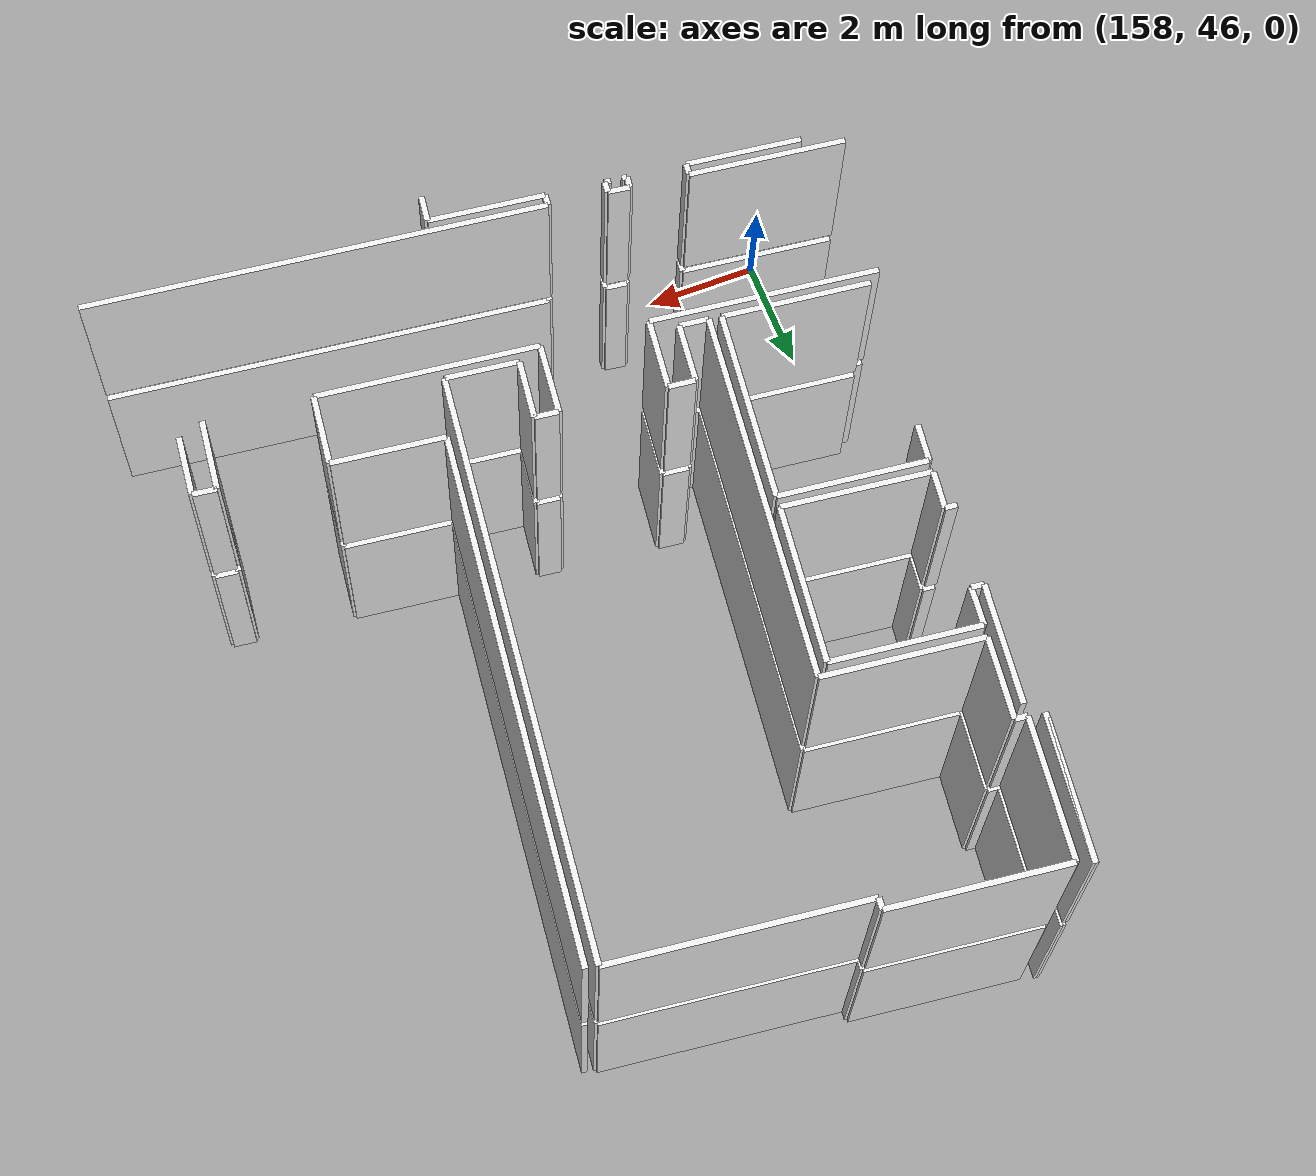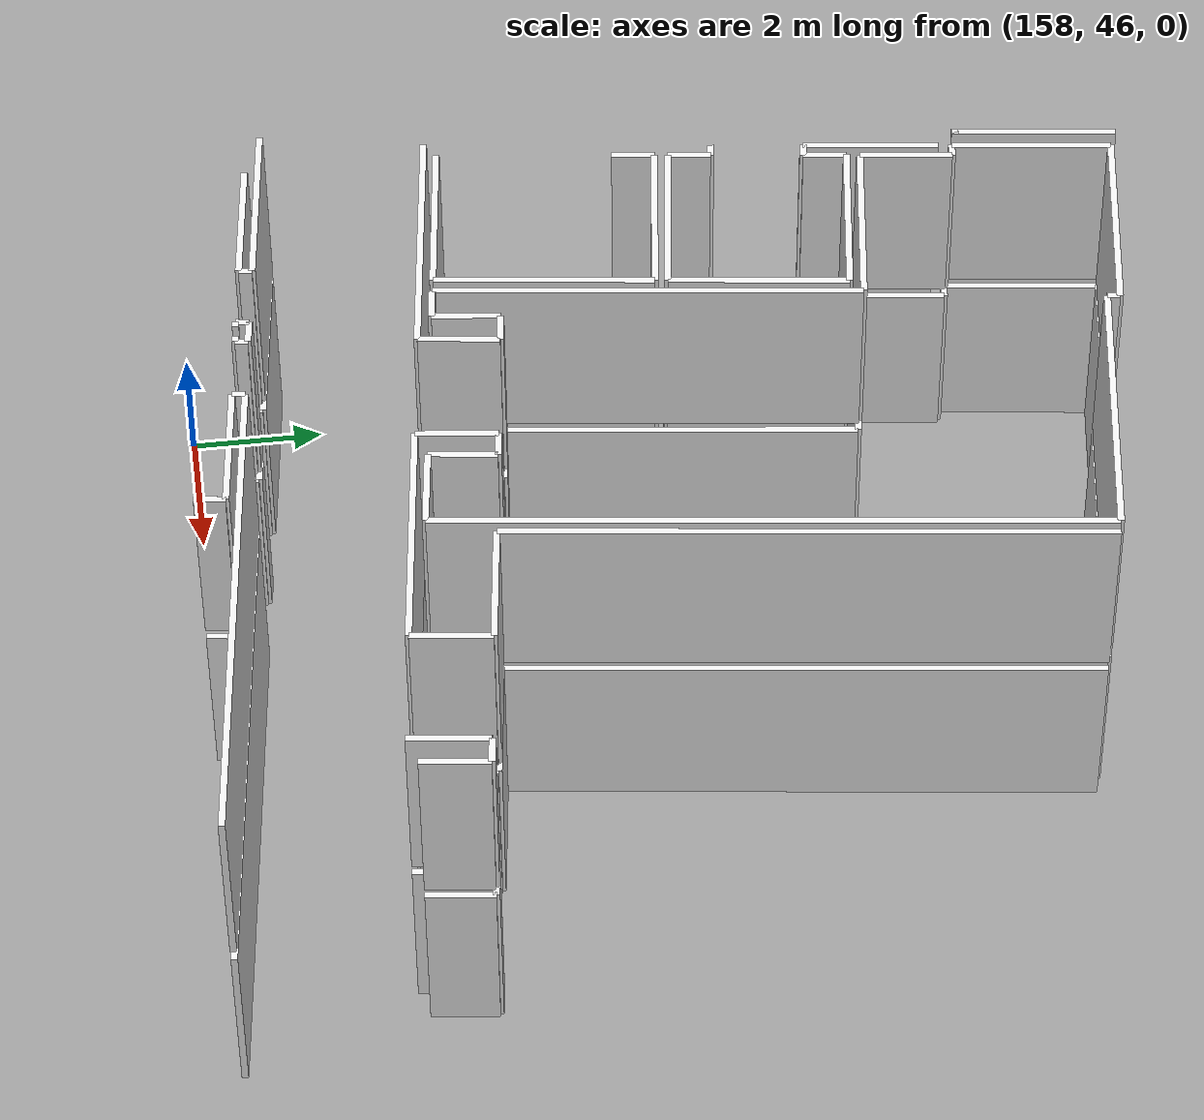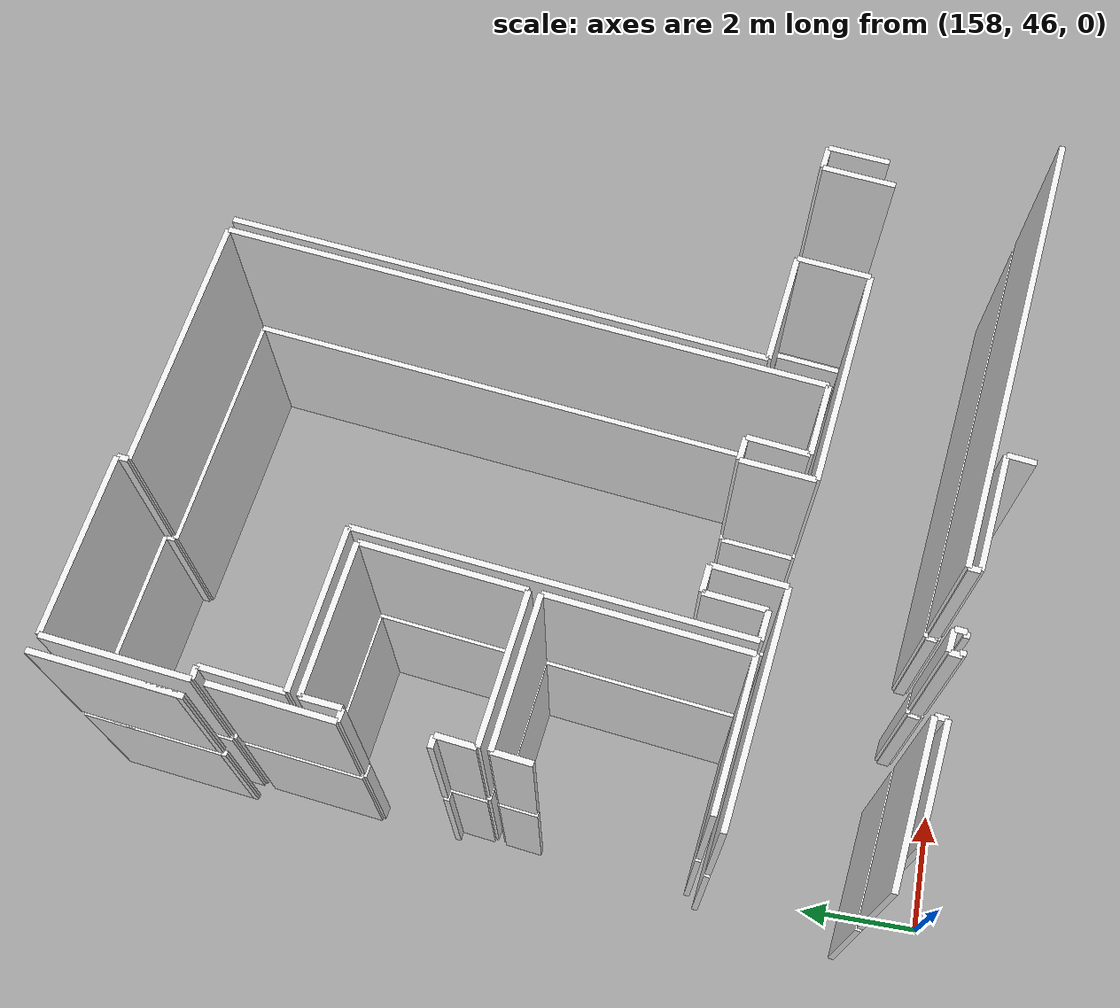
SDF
<sdf version="1.6">
 <world name="default">
  <model name="wall_166.1_46.3_0.0_link">
   <static>true</static>
   <pose>166.14500000001863 46.324999999953434 1.5 0 0 3.0218576675715907</pose>
   <link name="link">
    <visual name="visual">
     <geometry><box><size>7.7857433813364185 0.1 3</size></box></geometry>
     <material>
      <script><uri>file://media/materials/scripts/gazebo.material</uri><name>Gazebo/White</name></script>
     </material>
    </visual>
   </link>
  </model>
  <model name="wall_162.3_46.7_0.0_link">
   <static>true</static>
   <pose>162.27000000001863 46.69500000006519 1.5 0 0 -1.675673265652709</pose>
   <link name="link">
    <visual name="visual">
     <geometry><box><size>0.19104973169180559 0.1 3</size></box></geometry>
     <material>
      <script><uri>file://media/materials/scripts/gazebo.material</uri><name>Gazebo/White</name></script>
     </material>
    </visual>
   </link>
  </model>
  <model name="wall_161.3_46.8_0.0_link">
   <static>true</static>
   <pose>161.27000000001863 46.81500000017695 1.5 0 0 1.4659193879370842</pose>
   <link name="link">
    <visual name="visual">
     <geometry><box><size>0.19104973169180559 0.1 3</size></box></geometry>
     <material>
      <script><uri>file://media/materials/scripts/gazebo.material</uri><name>Gazebo/White</name></script>
     </material>
    </visual>
   </link>
  </model>
  <model name="wall_161.1_46.9_0.0_link">
   <static>true</static>
   <pose>161.09500000000116 46.93500000005588 1.5 0 0 3.007271212150422</pose>
   <link name="link">
    <visual name="visual">
     <geometry><box><size>0.3733630940800139 0.1 3</size></box></geometry>
     <material>
      <script><uri>file://media/materials/scripts/gazebo.material</uri><name>Gazebo/White</name></script>
     </material>
    </visual>
   </link>
  </model>
  <model name="wall_160.9_46.9_0.0_link">
   <static>true</static>
   <pose>160.89499999998952 46.859999999869615 1.5 0 0 -1.7196862741197598</pose>
   <link name="link">
    <visual name="visual">
     <geometry><box><size>0.20223748434128064 0.1 3</size></box></geometry>
     <material>
      <script><uri>file://media/materials/scripts/gazebo.material</uri><name>Gazebo/White</name></script>
     </material>
    </visual>
   </link>
  </model>
  <model name="wall_159.9_47.0_0.0_link">
   <static>true</static>
   <pose>159.89999999999418 46.97999999998137 1.5 0 0 1.4711276745918913</pose>
   <link name="link">
    <visual name="visual">
     <geometry><box><size>0.20099751260381943 0.1 3</size></box></geometry>
     <material>
      <script><uri>file://media/materials/scripts/gazebo.material</uri><name>Gazebo/White</name></script>
     </material>
    </visual>
   </link>
  </model>
  <model name="wall_158.6_47.2_0.0_link">
   <static>true</static>
   <pose>158.5899999999965 47.23999999999069 1.5 0 0 3.020968985070269</pose>
   <link name="link">
    <visual name="visual">
     <geometry><box><size>2.659323222111057 0.1 3</size></box></geometry>
     <material>
      <script><uri>file://media/materials/scripts/gazebo.material</uri><name>Gazebo/White</name></script>
     </material>
    </visual>
   </link>
  </model>
  <model name="wall_158.5_56.5_0.0_link">
   <static>true</static>
   <pose>158.51500000001397 56.53000000002794 1.5 0 0 -1.6939325529007196</pose>
   <link name="link">
    <visual name="visual">
     <geometry><box><size>2.0354115063237828 0.1 3</size></box></geometry>
     <material>
      <script><uri>file://media/materials/scripts/gazebo.material</uri><name>Gazebo/White</name></script>
     </material>
    </visual>
   </link>
  </model>
  <model name="wall_158.5_55.5_0.0_link">
   <static>true</static>
   <pose>158.49499999999534 55.50500000012107 1.5 0 0 -0.14189705367284136</pose>
   <link name="link">
    <visual name="visual">
     <geometry><box><size>0.2121320342901098 0.1 3</size></box></geometry>
     <material>
      <script><uri>file://media/materials/scripts/gazebo.material</uri><name>Gazebo/White</name></script>
     </material>
    </visual>
   </link>
  </model>
  <model name="wall_158.3_54.1_0.0_link">
   <static>true</static>
   <pose>158.3299999999872 54.11999999987893 1.5 0 0 3.0419240010121844</pose>
   <link name="link">
    <visual name="visual">
     <geometry><box><size>0.20099751243585498 0.1 3</size></box></geometry>
     <material>
      <script><uri>file://media/materials/scripts/gazebo.material</uri><name>Gazebo/White</name></script>
     </material>
    </visual>
   </link>
  </model>
  <model name="wall_159.6_49.6_0.0_link">
   <static>true</static>
   <pose>159.62000000002445 49.609999999869615 1.5 0 0 -0.11984180790081929</pose>
   <link name="link">
    <visual name="visual">
     <geometry><box><size>3.8475966524597003 0.1 3</size></box></geometry>
     <material>
      <script><uri>file://media/materials/scripts/gazebo.material</uri><name>Gazebo/White</name></script>
     </material>
    </visual>
   </link>
  </model>
  <model name="wall_161.6_50.0_0.0_link">
   <static>true</static>
   <pose>161.60500000001048 49.984999999869615 1.5 0 0 1.4474586259198403</pose>
   <link name="link">
    <visual name="visual">
     <geometry><box><size>1.2192620718694447 0.1 3</size></box></geometry>
     <material>
      <script><uri>file://media/materials/scripts/gazebo.material</uri><name>Gazebo/White</name></script>
     </material>
    </visual>
   </link>
  </model>
  <model name="wall_163.4_49.8_0.0_link">
   <static>true</static>
   <pose>163.39000000001397 49.77499999990687 1.5 0 0 -1.6859866085024886</pose>
   <link name="link">
    <visual name="visual">
     <geometry><box><size>1.2180722474113592 0.1 3</size></box></geometry>
     <material>
      <script><uri>file://media/materials/scripts/gazebo.material</uri><name>Gazebo/White</name></script>
     </material>
    </visual>
   </link>
  </model>
  <model name="wall_165.2_48.9_0.0_link">
   <static>true</static>
   <pose>165.1600000000035 48.949999999953434 1.5 0 0 -0.11900029336803308</pose>
   <link name="link">
    <visual name="visual">
     <geometry><box><size>3.7062110031539515 0.1 3</size></box></geometry>
     <material>
      <script><uri>file://media/materials/scripts/gazebo.material</uri><name>Gazebo/White</name></script>
     </material>
    </visual>
   </link>
  </model>
  <model name="wall_167.1_49.3_0.0_link">
   <static>true</static>
   <pose>167.07500000001164 49.330000000074506 1.5 0 0 1.446441332248135</pose>
   <link name="link">
    <visual name="visual">
     <geometry><box><size>1.2093386624324964 0.1 3</size></box></geometry>
     <material>
      <script><uri>file://media/materials/scripts/gazebo.material</uri><name>Gazebo/White</name></script>
     </material>
    </visual>
   </link>
  </model>
  <model name="wall_168.9_49.1_0.0_link">
   <static>true</static>
   <pose>168.8649999999907 49.11499999999069 1.5 0 0 -1.6941340276703445</pose>
   <link name="link">
    <visual name="visual">
     <geometry><box><size>1.2192620723387293 0.1 3</size></box></geometry>
     <material>
      <script><uri>file://media/materials/scripts/gazebo.material</uri><name>Gazebo/White</name></script>
     </material>
    </visual>
   </link>
  </model>
  <model name="wall_159.2_49.9_0.0_link">
   <static>true</static>
   <pose>159.1699999999837 49.86499999999069 1.5 0 0 -0.11640682593514659</pose>
   <link name="link">
    <visual name="visual">
     <geometry><box><size>2.4968980755447623 0.1 3</size></box></geometry>
     <material>
      <script><uri>file://media/materials/scripts/gazebo.material</uri><name>Gazebo/White</name></script>
     </material>
    </visual>
   </link>
  </model>
  <model name="wall_160.6_51.4_0.0_link">
   <static>true</static>
   <pose>160.60999999998603 51.35000000009313 1.5 0 0 1.4487071893822745</pose>
   <link name="link">
    <visual name="visual">
     <geometry><box><size>3.284448203056534 0.1 3</size></box></geometry>
     <material>
      <script><uri>file://media/materials/scripts/gazebo.material</uri><name>Gazebo/White</name></script>
     </material>
    </visual>
   </link>
  </model>
  <model name="wall_159.6_53.1_0.0_link">
   <static>true</static>
   <pose>159.57000000000698 53.125 1.5 0 0 3.025185827469413</pose>
   <link name="link">
    <visual name="visual">
     <geometry><box><size>2.4968980755988457 0.1 3</size></box></geometry>
     <material>
      <script><uri>file://media/materials/scripts/gazebo.material</uri><name>Gazebo/White</name></script>
     </material>
    </visual>
   </link>
  </model>
  <model name="wall_158.3_52.9_0.0_link">
   <static>true</static>
   <pose>158.29000000000815 52.949999999953434 1.5 0 0 -1.695151321341658</pose>
   <link name="link">
    <visual name="visual">
     <geometry><box><size>0.6449806199952839 0.1 3</size></box></geometry>
     <material>
      <script><uri>file://media/materials/scripts/gazebo.material</uri><name>Gazebo/White</name></script>
     </material>
    </visual>
   </link>
  </model>
  <model name="wall_158.8_57.0_0.0_link">
   <static>true</static>
   <pose>158.7850000000035 57.03000000002794 1.5 0 0 1.4482254517181363</pose>
   <link name="link">
    <visual name="visual">
     <geometry><box><size>1.390431588022665 0.1 3</size></box></geometry>
     <material>
      <script><uri>file://media/materials/scripts/gazebo.material</uri><name>Gazebo/White</name></script>
     </material>
    </visual>
   </link>
  </model>
  <model name="wall_158.8_57.7_0.0_link">
   <static>true</static>
   <pose>158.76499999998487 57.730000000214204 1.5 0 0 3.0466409471685547</pose>
   <link name="link">
    <visual name="visual">
     <geometry><box><size>0.21095023111991618 0.1 3</size></box></geometry>
     <material>
      <script><uri>file://media/materials/scripts/gazebo.material</uri><name>Gazebo/White</name></script>
     </material>
    </visual>
   </link>
  </model>
  <model name="wall_158.8_58.9_0.0_link">
   <static>true</static>
   <pose>158.80499999999302 58.93000000016764 1.5 0 0 1.4495453057038894</pose>
   <link name="link">
    <visual name="visual">
     <geometry><box><size>2.3976029695280316 0.1 3</size></box></geometry>
     <material>
      <script><uri>file://media/materials/scripts/gazebo.material</uri><name>Gazebo/White</name></script>
     </material>
    </visual>
   </link>
  </model>
  <model name="wall_160.4_59.9_0.0_link">
   <static>true</static>
   <pose>160.44000000000233 59.93999999994412 1.5 0 0 -0.12022278677294355</pose>
   <link name="link">
    <visual name="visual">
     <geometry><box><size>3.0016662039824453 0.1 3</size></box></geometry>
     <material>
      <script><uri>file://media/materials/scripts/gazebo.material</uri><name>Gazebo/White</name></script>
     </material>
    </visual>
   </link>
  </model>
  <model name="wall_161.9_59.7_0.0_link">
   <static>true</static>
   <pose>161.9199999999837 59.66499999980442 1.5 0 0 -1.675673265652709</pose>
   <link name="link">
    <visual name="visual">
     <geometry><box><size>0.19104973169180559 0.1 3</size></box></geometry>
     <material>
      <script><uri>file://media/materials/scripts/gazebo.material</uri><name>Gazebo/White</name></script>
     </material>
    </visual>
   </link>
  </model>
  <model name="wall_164.0_59.3_0.0_link">
   <static>true</static>
   <pose>164.02999999999884 59.31499999994412 1.5 0 0 -0.11970791786700266</pose>
   <link name="link">
    <visual name="visual">
     <geometry><box><size>4.27056202392456 0.1 3</size></box></geometry>
     <material>
      <script><uri>file://media/materials/scripts/gazebo.material</uri><name>Gazebo/White</name></script>
     </material>
    </visual>
   </link>
  </model>
  <model name="wall_165.6_54.1_0.0_link">
   <static>true</static>
   <pose>165.55000000001746 54.11499999999069 1.5 0 0 -1.691540779261425</pose>
   <link name="link">
    <visual name="visual">
     <geometry><box><size>9.96253481813775 0.1 3</size></box></geometry>
     <material>
      <script><uri>file://media/materials/scripts/gazebo.material</uri><name>Gazebo/White</name></script>
     </material>
    </visual>
   </link>
  </model>
  <model name="wall_164.3_49.2_0.0_link">
   <static>true</static>
   <pose>164.3399999999965 49.24499999987893 1.5 0 0 3.0192558198525035</pose>
   <link name="link">
    <visual name="visual">
     <geometry><box><size>1.2291867230188886 0.1 3</size></box></geometry>
     <material>
      <script><uri>file://media/materials/scripts/gazebo.material</uri><name>Gazebo/White</name></script>
     </material>
    </visual>
   </link>
  </model>
  <model name="wall_163.8_49.8_0.0_link">
   <static>true</static>
   <pose>163.7949999999837 49.824999999953434 1.5 0 0 1.44278726814752</pose>
   <link name="link">
    <visual name="visual">
     <geometry><box><size>1.0183319696888344 0.1 3</size></box></geometry>
     <material>
      <script><uri>file://media/materials/scripts/gazebo.material</uri><name>Gazebo/White</name></script>
     </material>
    </visual>
   </link>
  </model>
  <model name="wall_163.7_50.4_0.0_link">
   <static>true</static>
   <pose>163.6600000000035 50.35499999998137 1.5 0 0 3.017237659490783</pose>
   <link name="link">
    <visual name="visual">
     <geometry><box><size>0.4031128873571693 0.1 3</size></box></geometry>
     <material>
      <script><uri>file://media/materials/scripts/gazebo.material</uri><name>Gazebo/White</name></script>
     </material>
    </visual>
   </link>
  </model>
  <model name="wall_161.5_50.6_0.0_link">
   <static>true</static>
   <pose>161.4549999999872 50.61499999999069 1.5 0 0 3.030935431805427</pose>
   <link name="link">
    <visual name="visual">
     <geometry><box><size>0.4527692569492954 0.1 3</size></box></geometry>
     <material>
      <script><uri>file://media/materials/scripts/gazebo.material</uri><name>Gazebo/White</name></script>
     </material>
    </visual>
   </link>
  </model>
  <model name="wall_161.2_50.1_0.0_link">
   <static>true</static>
   <pose>161.1699999999837 50.13500000000931 1.5 0 0 -1.6890538359013414</pose>
   <link name="link">
    <visual name="visual">
     <geometry><box><size>1.0171037314295985 0.1 3</size></box></geometry>
     <material>
      <script><uri>file://media/materials/scripts/gazebo.material</uri><name>Gazebo/White</name></script>
     </material>
    </visual>
   </link>
  </model>
  <model name="wall_160.9_49.7_0.0_link">
   <static>true</static>
   <pose>160.8649999999907 49.65999999991618 1.5 0 0 3.019750216455228</pose>
   <link name="link">
    <visual name="visual">
     <geometry><box><size>0.4936598018854468 0.1 3</size></box></geometry>
     <material>
      <script><uri>file://media/materials/scripts/gazebo.material</uri><name>Gazebo/White</name></script>
     </material>
    </visual>
   </link>
  </model>
  <model name="wall_161.0_52.9_0.0_link">
   <static>true</static>
   <pose>161.0 52.85499999998137 1.5 0 0 1.4513051071243046</pose>
   <link name="link">
    <visual name="visual">
     <geometry><box><size>6.375460767737294 0.1 3</size></box></geometry>
     <material>
      <script><uri>file://media/materials/scripts/gazebo.material</uri><name>Gazebo/White</name></script>
     </material>
    </visual>
   </link>
  </model>
  <model name="wall_160.0_56.2_0.0_link">
   <static>true</static>
   <pose>160.04000000000815 56.17999999993481 1.5 0 0 3.0227523090833937</pose>
   <link name="link">
    <visual name="visual">
     <geometry><box><size>2.6990368652271632 0.1 3</size></box></geometry>
     <material>
      <script><uri>file://media/materials/scripts/gazebo.material</uri><name>Gazebo/White</name></script>
     </material>
    </visual>
   </link>
  </model>
  <model name="wall_169.3_49.2_0.0_link">
   <static>true</static>
   <pose>169.27999999999884 49.15999999991618 1.5 0 0 1.453687582178367</pose>
   <link name="link">
    <visual name="visual">
     <geometry><box><size>1.0270345661421774 0.1 3</size></box></geometry>
     <material>
      <script><uri>file://media/materials/scripts/gazebo.material</uri><name>Gazebo/White</name></script>
     </material>
    </visual>
   </link>
  </model>
  <model name="wall_169.1_49.7_0.0_link">
   <static>true</static>
   <pose>169.14000000001397 49.69500000006519 1.5 0 0 3.01723765836245</pose>
   <link name="link">
    <visual name="visual">
     <geometry><box><size>0.4031128874726857 0.1 3</size></box></geometry>
     <material>
      <script><uri>file://media/materials/scripts/gazebo.material</uri><name>Gazebo/White</name></script>
     </material>
    </visual>
   </link>
  </model>
  <model name="wall_166.2_50.0_0.0_link">
   <static>true</static>
   <pose>166.21000000002095 50.045000000158325 1.5 0 0 3.0198571684511863</pose>
   <link name="link">
    <visual name="visual">
     <geometry><box><size>1.894016895386348 0.1 3</size></box></geometry>
     <material>
      <script><uri>file://media/materials/scripts/gazebo.material</uri><name>Gazebo/White</name></script>
     </material>
    </visual>
   </link>
  </model>
  <model name="wall_165.8_54.6_0.0_link">
   <static>true</static>
   <pose>165.80999999999767 54.59499999997206 1.5 0 0 1.4496339921387622</pose>
   <link name="link">
    <visual name="visual">
     <geometry><box><size>8.935507819571937 0.1 3</size></box></geometry>
     <material>
      <script><uri>file://media/materials/scripts/gazebo.material</uri><name>Gazebo/White</name></script>
     </material>
    </visual>
   </link>
  </model>
  <model name="wall_158.9_47.0_0.0_link">
   <static>true</static>
   <pose>158.91500000000815 47.0 1.5 0 0 -0.12246105752953153</pose>
   <link name="link">
    <visual name="visual">
     <geometry><box><size>1.964713719642811 0.1 3</size></box></geometry>
     <material>
      <script><uri>file://media/materials/scripts/gazebo.material</uri><name>Gazebo/White</name></script>
     </material>
    </visual>
   </link>
  </model>
  <model name="wall_160.9_46.8_0.0_link">
   <static>true</static>
   <pose>160.92499999998836 46.75499999988824 1.5 0 0 -0.11065721876040727</pose>
   <link name="link">
    <visual name="visual">
     <geometry><box><size>0.09055385132429387 0.1 3</size></box></geometry>
     <material>
      <script><uri>file://media/materials/scripts/gazebo.material</uri><name>Gazebo/White</name></script>
     </material>
    </visual>
   </link>
  </model>
  <model name="wall_161.2_46.7_0.0_link">
   <static>true</static>
   <pose>161.20999999999185 46.72500000009313 1.5 0 0 -0.09966865024353948</pose>
   <link name="link">
    <visual name="visual">
     <geometry><box><size>0.10049875622371936 0.1 3</size></box></geometry>
     <material>
      <script><uri>file://media/materials/scripts/gazebo.material</uri><name>Gazebo/White</name></script>
     </material>
    </visual>
   </link>
  </model>
  <model name="wall_163.2_46.5_0.0_link">
   <static>true</static>
   <pose>163.2399999999907 46.47999999998137 1.5 0 0 -0.12184243713456504</pose>
   <link name="link">
    <visual name="visual">
     <geometry><box><size>1.9746392075417871 0.1 3</size></box></geometry>
     <material>
      <script><uri>file://media/materials/scripts/gazebo.material</uri><name>Gazebo/White</name></script>
     </material>
    </visual>
   </link>
  </model>
  <model name="wall_164.2_46.1_0.0_link">
   <static>true</static>
   <pose>164.18999999997322 46.12999999988824 1.5 0 0 -1.7004988639562184</pose>
   <link name="link">
    <visual name="visual">
     <geometry><box><size>0.46389654015248694 0.1 3</size></box></geometry>
     <material>
      <script><uri>file://media/materials/scripts/gazebo.material</uri><name>Gazebo/White</name></script>
     </material>
    </visual>
   </link>
  </model>
  <model name="wall_161.0_54.5_0.0_link">
   <static>true</static>
   <pose>160.99499999999534 54.50499999988824 1.5 0 0 1.4478244572426628</pose>
   <link name="link">
    <visual name="visual">
     <geometry><box><size>2.6903159664943592 0.1 3</size></box></geometry>
     <material>
      <script><uri>file://media/materials/scripts/gazebo.material</uri><name>Gazebo/White</name></script>
     </material>
    </visual>
   </link>
  </model>
  <model name="wall_159.9_56.0_0.0_link">
   <static>true</static>
   <pose>159.91499999997905 55.98999999999069 1.5 0 0 3.021688668113723</pose>
   <link name="link">
    <visual name="visual">
     <geometry><box><size>2.508007177047398 0.1 3</size></box></geometry>
     <material>
      <script><uri>file://media/materials/scripts/gazebo.material</uri><name>Gazebo/White</name></script>
     </material>
    </visual>
   </link>
  </model>
  <model name="wall_158.6_55.8_0.0_link">
   <static>true</static>
   <pose>158.6349999999802 55.81500000017695 1.5 0 0 -1.6780751824691755</pose>
   <link name="link">
    <visual name="visual">
     <geometry><box><size>0.6537583650553972 0.1 3</size></box></geometry>
     <material>
      <script><uri>file://media/materials/scripts/gazebo.material</uri><name>Gazebo/White</name></script>
     </material>
    </visual>
   </link>
  </model>
  <model name="wall_158.4_53.8_0.0_link">
   <static>true</static>
   <pose>158.38999999998487 53.79000000003725 1.5 0 0 -1.6951513214312084</pose>
   <link name="link">
    <visual name="visual">
     <geometry><box><size>0.6449806195332185 0.1 3</size></box></geometry>
     <material>
      <script><uri>file://media/materials/scripts/gazebo.material</uri><name>Gazebo/White</name></script>
     </material>
    </visual>
   </link>
  </model>
  <model name="wall_159.6_53.3_0.0_link">
   <static>true</static>
   <pose>159.5899999999965 53.32000000006519 1.5 0 0 -0.12038282090969171</pose>
   <link name="link">
    <visual name="visual">
     <geometry><box><size>2.498079262226073 0.1 3</size></box></geometry>
     <material>
      <script><uri>file://media/materials/scripts/gazebo.material</uri><name>Gazebo/White</name></script>
     </material>
    </visual>
   </link>
  </model>
  <model name="wall_158.5_59.1_0.0_link">
   <static>true</static>
   <pose>158.5450000000128 59.06000000005588 1.5 0 0 -1.6930647307080706</pose>
   <link name="link">
    <visual name="visual">
     <geometry><box><size>2.377751038601466 0.1 3</size></box></geometry>
     <material>
      <script><uri>file://media/materials/scripts/gazebo.material</uri><name>Gazebo/White</name></script>
     </material>
    </visual>
   </link>
  </model>
  <model name="wall_158.4_57.8_0.0_link">
   <static>true</static>
   <pose>158.39500000001863 57.829999999841675 1.5 0 0 -1.6704649792860586</pose>
   <link name="link">
    <visual name="visual">
     <geometry><box><size>0.10049875630480566 0.1 3</size></box></geometry>
     <material>
      <script><uri>file://media/materials/scripts/gazebo.material</uri><name>Gazebo/White</name></script>
     </material>
    </visual>
   </link>
  </model>
  <model name="wall_158.5_59.0_0.0_link">
   <static>true</static>
   <pose>158.54000000000815 59.01000000000931 1.5 0 0 1.4494443262497225</pose>
   <link name="link">
    <visual name="visual">
     <geometry><box><size>2.4782251717914545 0.1 3</size></box></geometry>
     <material>
      <script><uri>file://media/materials/scripts/gazebo.material</uri><name>Gazebo/White</name></script>
     </material>
    </visual>
   </link>
  </model>
  <model name="wall_166.1_46.3_3.2_link">
   <static>true</static>
   <pose>166.14500000001863 46.324999999953434 4.7 0 0 3.0218576675715907</pose>
   <link name="link">
    <visual name="visual">
     <geometry><box><size>7.7857433813364185 0.1 3</size></box></geometry>
     <material>
      <script><uri>file://media/materials/scripts/gazebo.material</uri><name>Gazebo/White</name></script>
     </material>
    </visual>
   </link>
  </model>
  <model name="wall_162.3_46.7_3.2_link">
   <static>true</static>
   <pose>162.27000000001863 46.69500000006519 4.7 0 0 -1.675673265652709</pose>
   <link name="link">
    <visual name="visual">
     <geometry><box><size>0.19104973169180559 0.1 3</size></box></geometry>
     <material>
      <script><uri>file://media/materials/scripts/gazebo.material</uri><name>Gazebo/White</name></script>
     </material>
    </visual>
   </link>
  </model>
  <model name="wall_161.3_46.8_3.2_link">
   <static>true</static>
   <pose>161.27000000001863 46.81500000017695 4.7 0 0 1.4659193879370842</pose>
   <link name="link">
    <visual name="visual">
     <geometry><box><size>0.19104973169180559 0.1 3</size></box></geometry>
     <material>
      <script><uri>file://media/materials/scripts/gazebo.material</uri><name>Gazebo/White</name></script>
     </material>
    </visual>
   </link>
  </model>
  <model name="wall_161.1_46.9_3.2_link">
   <static>true</static>
   <pose>161.09500000000116 46.93500000005588 4.7 0 0 3.007271212150422</pose>
   <link name="link">
    <visual name="visual">
     <geometry><box><size>0.3733630940800139 0.1 3</size></box></geometry>
     <material>
      <script><uri>file://media/materials/scripts/gazebo.material</uri><name>Gazebo/White</name></script>
     </material>
    </visual>
   </link>
  </model>
  <model name="wall_160.9_46.9_3.2_link">
   <static>true</static>
   <pose>160.89499999998952 46.859999999869615 4.7 0 0 -1.7196862741197598</pose>
   <link name="link">
    <visual name="visual">
     <geometry><box><size>0.20223748434128064 0.1 3</size></box></geometry>
     <material>
      <script><uri>file://media/materials/scripts/gazebo.material</uri><name>Gazebo/White</name></script>
     </material>
    </visual>
   </link>
  </model>
  <model name="wall_159.9_47.0_3.2_link">
   <static>true</static>
   <pose>159.89999999999418 46.97999999998137 4.7 0 0 1.4711276745918913</pose>
   <link name="link">
    <visual name="visual">
     <geometry><box><size>0.20099751260381943 0.1 3</size></box></geometry>
     <material>
      <script><uri>file://media/materials/scripts/gazebo.material</uri><name>Gazebo/White</name></script>
     </material>
    </visual>
   </link>
  </model>
  <model name="wall_158.6_47.2_3.2_link">
   <static>true</static>
   <pose>158.5899999999965 47.23999999999069 4.7 0 0 3.020968985070269</pose>
   <link name="link">
    <visual name="visual">
     <geometry><box><size>2.659323222111057 0.1 3</size></box></geometry>
     <material>
      <script><uri>file://media/materials/scripts/gazebo.material</uri><name>Gazebo/White</name></script>
     </material>
    </visual>
   </link>
  </model>
  <model name="wall_158.5_56.5_3.2_link">
   <static>true</static>
   <pose>158.51500000001397 56.53000000002794 4.7 0 0 -1.6939325529007196</pose>
   <link name="link">
    <visual name="visual">
     <geometry><box><size>2.0354115063237828 0.1 3</size></box></geometry>
     <material>
      <script><uri>file://media/materials/scripts/gazebo.material</uri><name>Gazebo/White</name></script>
     </material>
    </visual>
   </link>
  </model>
  <model name="wall_158.5_55.5_3.2_link">
   <static>true</static>
   <pose>158.49499999999534 55.50500000012107 4.7 0 0 -0.14189705367284136</pose>
   <link name="link">
    <visual name="visual">
     <geometry><box><size>0.2121320342901098 0.1 3</size></box></geometry>
     <material>
      <script><uri>file://media/materials/scripts/gazebo.material</uri><name>Gazebo/White</name></script>
     </material>
    </visual>
   </link>
  </model>
  <model name="wall_158.3_54.1_3.2_link">
   <static>true</static>
   <pose>158.3299999999872 54.11999999987893 4.7 0 0 3.0419240010121844</pose>
   <link name="link">
    <visual name="visual">
     <geometry><box><size>0.20099751243585498 0.1 3</size></box></geometry>
     <material>
      <script><uri>file://media/materials/scripts/gazebo.material</uri><name>Gazebo/White</name></script>
     </material>
    </visual>
   </link>
  </model>
  <model name="wall_159.6_49.6_3.2_link">
   <static>true</static>
   <pose>159.62000000002445 49.609999999869615 4.7 0 0 -0.11984180790081929</pose>
   <link name="link">
    <visual name="visual">
     <geometry><box><size>3.8475966524597003 0.1 3</size></box></geometry>
     <material>
      <script><uri>file://media/materials/scripts/gazebo.material</uri><name>Gazebo/White</name></script>
     </material>
    </visual>
   </link>
  </model>
  <model name="wall_161.6_50.0_3.2_link">
   <static>true</static>
   <pose>161.60500000001048 49.984999999869615 4.7 0 0 1.4474586259198403</pose>
   <link name="link">
    <visual name="visual">
     <geometry><box><size>1.2192620718694447 0.1 3</size></box></geometry>
     <material>
      <script><uri>file://media/materials/scripts/gazebo.material</uri><name>Gazebo/White</name></script>
     </material>
    </visual>
   </link>
  </model>
  <model name="wall_163.4_49.8_3.2_link">
   <static>true</static>
   <pose>163.39000000001397 49.77499999990687 4.7 0 0 -1.6859866085024886</pose>
   <link name="link">
    <visual name="visual">
     <geometry><box><size>1.2180722474113592 0.1 3</size></box></geometry>
     <material>
      <script><uri>file://media/materials/scripts/gazebo.material</uri><name>Gazebo/White</name></script>
     </material>
    </visual>
   </link>
  </model>
  <model name="wall_165.2_48.9_3.2_link">
   <static>true</static>
   <pose>165.1600000000035 48.949999999953434 4.7 0 0 -0.11900029336803308</pose>
   <link name="link">
    <visual name="visual">
     <geometry><box><size>3.7062110031539515 0.1 3</size></box></geometry>
     <material>
      <script><uri>file://media/materials/scripts/gazebo.material</uri><name>Gazebo/White</name></script>
     </material>
    </visual>
   </link>
  </model>
  <model name="wall_167.1_49.3_3.2_link">
   <static>true</static>
   <pose>167.07500000001164 49.330000000074506 4.7 0 0 1.446441332248135</pose>
   <link name="link">
    <visual name="visual">
     <geometry><box><size>1.2093386624324964 0.1 3</size></box></geometry>
     <material>
      <script><uri>file://media/materials/scripts/gazebo.material</uri><name>Gazebo/White</name></script>
     </material>
    </visual>
   </link>
  </model>
  <model name="wall_168.9_49.1_3.2_link">
   <static>true</static>
   <pose>168.8649999999907 49.11499999999069 4.7 0 0 -1.6941340276703445</pose>
   <link name="link">
    <visual name="visual">
     <geometry><box><size>1.2192620723387293 0.1 3</size></box></geometry>
     <material>
      <script><uri>file://media/materials/scripts/gazebo.material</uri><name>Gazebo/White</name></script>
     </material>
    </visual>
   </link>
  </model>
  <model name="wall_159.2_49.9_3.2_link">
   <static>true</static>
   <pose>159.1699999999837 49.86499999999069 4.7 0 0 -0.11640682593514659</pose>
   <link name="link">
    <visual name="visual">
     <geometry><box><size>2.4968980755447623 0.1 3</size></box></geometry>
     <material>
      <script><uri>file://media/materials/scripts/gazebo.material</uri><name>Gazebo/White</name></script>
     </material>
    </visual>
   </link>
  </model>
  <model name="wall_160.6_51.4_3.2_link">
   <static>true</static>
   <pose>160.60999999998603 51.35000000009313 4.7 0 0 1.4487071893822745</pose>
   <link name="link">
    <visual name="visual">
     <geometry><box><size>3.284448203056534 0.1 3</size></box></geometry>
     <material>
      <script><uri>file://media/materials/scripts/gazebo.material</uri><name>Gazebo/White</name></script>
     </material>
    </visual>
   </link>
  </model>
  <model name="wall_159.6_53.1_3.2_link">
   <static>true</static>
   <pose>159.57000000000698 53.125 4.7 0 0 3.025185827469413</pose>
   <link name="link">
    <visual name="visual">
     <geometry><box><size>2.4968980755988457 0.1 3</size></box></geometry>
     <material>
      <script><uri>file://media/materials/scripts/gazebo.material</uri><name>Gazebo/White</name></script>
     </material>
    </visual>
   </link>
  </model>
  <model name="wall_158.3_52.9_3.2_link">
   <static>true</static>
   <pose>158.29000000000815 52.949999999953434 4.7 0 0 -1.695151321341658</pose>
   <link name="link">
    <visual name="visual">
     <geometry><box><size>0.6449806199952839 0.1 3</size></box></geometry>
     <material>
      <script><uri>file://media/materials/scripts/gazebo.material</uri><name>Gazebo/White</name></script>
     </material>
    </visual>
   </link>
  </model>
  <model name="wall_158.8_57.0_3.2_link">
   <static>true</static>
   <pose>158.7850000000035 57.03000000002794 4.7 0 0 1.4482254517181363</pose>
   <link name="link">
    <visual name="visual">
     <geometry><box><size>1.390431588022665 0.1 3</size></box></geometry>
     <material>
      <script><uri>file://media/materials/scripts/gazebo.material</uri><name>Gazebo/White</name></script>
     </material>
    </visual>
   </link>
  </model>
  <model name="wall_158.8_57.7_3.2_link">
   <static>true</static>
   <pose>158.76499999998487 57.730000000214204 4.7 0 0 3.0466409471685547</pose>
   <link name="link">
    <visual name="visual">
     <geometry><box><size>0.21095023111991618 0.1 3</size></box></geometry>
     <material>
      <script><uri>file://media/materials/scripts/gazebo.material</uri><name>Gazebo/White</name></script>
     </material>
    </visual>
   </link>
  </model>
  <model name="wall_158.8_58.9_3.2_link">
   <static>true</static>
   <pose>158.80499999999302 58.93000000016764 4.7 0 0 1.4495453057038894</pose>
   <link name="link">
    <visual name="visual">
     <geometry><box><size>2.3976029695280316 0.1 3</size></box></geometry>
     <material>
      <script><uri>file://media/materials/scripts/gazebo.material</uri><name>Gazebo/White</name></script>
     </material>
    </visual>
   </link>
  </model>
  <model name="wall_160.4_59.9_3.2_link">
   <static>true</static>
   <pose>160.44000000000233 59.93999999994412 4.7 0 0 -0.12022278677294355</pose>
   <link name="link">
    <visual name="visual">
     <geometry><box><size>3.0016662039824453 0.1 3</size></box></geometry>
     <material>
      <script><uri>file://media/materials/scripts/gazebo.material</uri><name>Gazebo/White</name></script>
     </material>
    </visual>
   </link>
  </model>
  <model name="wall_161.9_59.7_3.2_link">
   <static>true</static>
   <pose>161.9199999999837 59.66499999980442 4.7 0 0 -1.675673265652709</pose>
   <link name="link">
    <visual name="visual">
     <geometry><box><size>0.19104973169180559 0.1 3</size></box></geometry>
     <material>
      <script><uri>file://media/materials/scripts/gazebo.material</uri><name>Gazebo/White</name></script>
     </material>
    </visual>
   </link>
  </model>
  <model name="wall_164.0_59.3_3.2_link">
   <static>true</static>
   <pose>164.02999999999884 59.31499999994412 4.7 0 0 -0.11970791786700266</pose>
   <link name="link">
    <visual name="visual">
     <geometry><box><size>4.27056202392456 0.1 3</size></box></geometry>
     <material>
      <script><uri>file://media/materials/scripts/gazebo.material</uri><name>Gazebo/White</name></script>
     </material>
    </visual>
   </link>
  </model>
  <model name="wall_165.6_54.1_3.2_link">
   <static>true</static>
   <pose>165.55000000001746 54.11499999999069 4.7 0 0 -1.691540779261425</pose>
   <link name="link">
    <visual name="visual">
     <geometry><box><size>9.96253481813775 0.1 3</size></box></geometry>
     <material>
      <script><uri>file://media/materials/scripts/gazebo.material</uri><name>Gazebo/White</name></script>
     </material>
    </visual>
   </link>
  </model>
  <model name="wall_164.3_49.2_3.2_link">
   <static>true</static>
   <pose>164.3399999999965 49.24499999987893 4.7 0 0 3.0192558198525035</pose>
   <link name="link">
    <visual name="visual">
     <geometry><box><size>1.2291867230188886 0.1 3</size></box></geometry>
     <material>
      <script><uri>file://media/materials/scripts/gazebo.material</uri><name>Gazebo/White</name></script>
     </material>
    </visual>
   </link>
  </model>
  <model name="wall_163.8_49.8_3.2_link">
   <static>true</static>
   <pose>163.7949999999837 49.824999999953434 4.7 0 0 1.44278726814752</pose>
   <link name="link">
    <visual name="visual">
     <geometry><box><size>1.0183319696888344 0.1 3</size></box></geometry>
     <material>
      <script><uri>file://media/materials/scripts/gazebo.material</uri><name>Gazebo/White</name></script>
     </material>
    </visual>
   </link>
  </model>
  <model name="wall_163.7_50.4_3.2_link">
   <static>true</static>
   <pose>163.6600000000035 50.35499999998137 4.7 0 0 3.017237659490783</pose>
   <link name="link">
    <visual name="visual">
     <geometry><box><size>0.4031128873571693 0.1 3</size></box></geometry>
     <material>
      <script><uri>file://media/materials/scripts/gazebo.material</uri><name>Gazebo/White</name></script>
     </material>
    </visual>
   </link>
  </model>
  <model name="wall_161.5_50.6_3.2_link">
   <static>true</static>
   <pose>161.4549999999872 50.61499999999069 4.7 0 0 3.030935431805427</pose>
   <link name="link">
    <visual name="visual">
     <geometry><box><size>0.4527692569492954 0.1 3</size></box></geometry>
     <material>
      <script><uri>file://media/materials/scripts/gazebo.material</uri><name>Gazebo/White</name></script>
     </material>
    </visual>
   </link>
  </model>
  <model name="wall_161.2_50.1_3.2_link">
   <static>true</static>
   <pose>161.1699999999837 50.13500000000931 4.7 0 0 -1.6890538359013414</pose>
   <link name="link">
    <visual name="visual">
     <geometry><box><size>1.0171037314295985 0.1 3</size></box></geometry>
     <material>
      <script><uri>file://media/materials/scripts/gazebo.material</uri><name>Gazebo/White</name></script>
     </material>
    </visual>
   </link>
  </model>
  <model name="wall_160.9_49.7_3.2_link">
   <static>true</static>
   <pose>160.8649999999907 49.65999999991618 4.7 0 0 3.019750216455228</pose>
   <link name="link">
    <visual name="visual">
     <geometry><box><size>0.4936598018854468 0.1 3</size></box></geometry>
     <material>
      <script><uri>file://media/materials/scripts/gazebo.material</uri><name>Gazebo/White</name></script>
     </material>
    </visual>
   </link>
  </model>
  <model name="wall_161.0_52.9_3.2_link">
   <static>true</static>
   <pose>161.0 52.85499999998137 4.7 0 0 1.4513051071243046</pose>
   <link name="link">
    <visual name="visual">
     <geometry><box><size>6.375460767737294 0.1 3</size></box></geometry>
     <material>
      <script><uri>file://media/materials/scripts/gazebo.material</uri><name>Gazebo/White</name></script>
     </material>
    </visual>
   </link>
  </model>
  <model name="wall_160.0_56.2_3.2_link">
   <static>true</static>
   <pose>160.04000000000815 56.17999999993481 4.7 0 0 3.0227523090833937</pose>
   <link name="link">
    <visual name="visual">
     <geometry><box><size>2.6990368652271632 0.1 3</size></box></geometry>
     <material>
      <script><uri>file://media/materials/scripts/gazebo.material</uri><name>Gazebo/White</name></script>
     </material>
    </visual>
   </link>
  </model>
  <model name="wall_169.3_49.2_3.2_link">
   <static>true</static>
   <pose>169.27999999999884 49.15999999991618 4.7 0 0 1.453687582178367</pose>
   <link name="link">
    <visual name="visual">
     <geometry><box><size>1.0270345661421774 0.1 3</size></box></geometry>
     <material>
      <script><uri>file://media/materials/scripts/gazebo.material</uri><name>Gazebo/White</name></script>
     </material>
    </visual>
   </link>
  </model>
  <model name="wall_169.1_49.7_3.2_link">
   <static>true</static>
   <pose>169.14000000001397 49.69500000006519 4.7 0 0 3.01723765836245</pose>
   <link name="link">
    <visual name="visual">
     <geometry><box><size>0.4031128874726857 0.1 3</size></box></geometry>
     <material>
      <script><uri>file://media/materials/scripts/gazebo.material</uri><name>Gazebo/White</name></script>
     </material>
    </visual>
   </link>
  </model>
  <model name="wall_166.2_50.0_3.2_link">
   <static>true</static>
   <pose>166.21000000002095 50.045000000158325 4.7 0 0 3.0198571684511863</pose>
   <link name="link">
    <visual name="visual">
     <geometry><box><size>1.894016895386348 0.1 3</size></box></geometry>
     <material>
      <script><uri>file://media/materials/scripts/gazebo.material</uri><name>Gazebo/White</name></script>
     </material>
    </visual>
   </link>
  </model>
  <model name="wall_165.8_54.6_3.2_link">
   <static>true</static>
   <pose>165.80999999999767 54.59499999997206 4.7 0 0 1.4496339921387622</pose>
   <link name="link">
    <visual name="visual">
     <geometry><box><size>8.935507819571937 0.1 3</size></box></geometry>
     <material>
      <script><uri>file://media/materials/scripts/gazebo.material</uri><name>Gazebo/White</name></script>
     </material>
    </visual>
   </link>
  </model>
  <model name="wall_158.9_47.0_3.2_link">
   <static>true</static>
   <pose>158.91500000000815 47.0 4.7 0 0 -0.12246105752953153</pose>
   <link name="link">
    <visual name="visual">
     <geometry><box><size>1.964713719642811 0.1 3</size></box></geometry>
     <material>
      <script><uri>file://media/materials/scripts/gazebo.material</uri><name>Gazebo/White</name></script>
     </material>
    </visual>
   </link>
  </model>
  <model name="wall_160.9_46.8_3.2_link">
   <static>true</static>
   <pose>160.92499999998836 46.75499999988824 4.7 0 0 -0.11065721876040727</pose>
   <link name="link">
    <visual name="visual">
     <geometry><box><size>0.09055385132429387 0.1 3</size></box></geometry>
     <material>
      <script><uri>file://media/materials/scripts/gazebo.material</uri><name>Gazebo/White</name></script>
     </material>
    </visual>
   </link>
  </model>
  <model name="wall_161.2_46.7_3.2_link">
   <static>true</static>
   <pose>161.20999999999185 46.72500000009313 4.7 0 0 -0.09966865024353948</pose>
   <link name="link">
    <visual name="visual">
     <geometry><box><size>0.10049875622371936 0.1 3</size></box></geometry>
     <material>
      <script><uri>file://media/materials/scripts/gazebo.material</uri><name>Gazebo/White</name></script>
     </material>
    </visual>
   </link>
  </model>
  <model name="wall_163.2_46.5_3.2_link">
   <static>true</static>
   <pose>163.2399999999907 46.47999999998137 4.7 0 0 -0.12184243713456504</pose>
   <link name="link">
    <visual name="visual">
     <geometry><box><size>1.9746392075417871 0.1 3</size></box></geometry>
     <material>
      <script><uri>file://media/materials/scripts/gazebo.material</uri><name>Gazebo/White</name></script>
     </material>
    </visual>
   </link>
  </model>
  <model name="wall_164.2_46.1_3.2_link">
   <static>true</static>
   <pose>164.18999999997322 46.12999999988824 4.7 0 0 -1.7004988639562184</pose>
   <link name="link">
    <visual name="visual">
     <geometry><box><size>0.46389654015248694 0.1 3</size></box></geometry>
     <material>
      <script><uri>file://media/materials/scripts/gazebo.material</uri><name>Gazebo/White</name></script>
     </material>
    </visual>
   </link>
  </model>
  <model name="wall_161.0_54.5_3.2_link">
   <static>true</static>
   <pose>160.99499999999534 54.50499999988824 4.7 0 0 1.4478244572426628</pose>
   <link name="link">
    <visual name="visual">
     <geometry><box><size>2.6903159664943592 0.1 3</size></box></geometry>
     <material>
      <script><uri>file://media/materials/scripts/gazebo.material</uri><name>Gazebo/White</name></script>
     </material>
    </visual>
   </link>
  </model>
  <model name="wall_159.9_56.0_3.2_link">
   <static>true</static>
   <pose>159.91499999997905 55.98999999999069 4.7 0 0 3.021688668113723</pose>
   <link name="link">
    <visual name="visual">
     <geometry><box><size>2.508007177047398 0.1 3</size></box></geometry>
     <material>
      <script><uri>file://media/materials/scripts/gazebo.material</uri><name>Gazebo/White</name></script>
     </material>
    </visual>
   </link>
  </model>
  <model name="wall_158.6_55.8_3.2_link">
   <static>true</static>
   <pose>158.6349999999802 55.81500000017695 4.7 0 0 -1.6780751824691755</pose>
   <link name="link">
    <visual name="visual">
     <geometry><box><size>0.6537583650553972 0.1 3</size></box></geometry>
     <material>
      <script><uri>file://media/materials/scripts/gazebo.material</uri><name>Gazebo/White</name></script>
     </material>
    </visual>
   </link>
  </model>
  <model name="wall_158.4_53.8_3.2_link">
   <static>true</static>
   <pose>158.38999999998487 53.79000000003725 4.7 0 0 -1.6951513214312084</pose>
   <link name="link">
    <visual name="visual">
     <geometry><box><size>0.6449806195332185 0.1 3</size></box></geometry>
     <material>
      <script><uri>file://media/materials/scripts/gazebo.material</uri><name>Gazebo/White</name></script>
     </material>
    </visual>
   </link>
  </model>
  <model name="wall_159.6_53.3_3.2_link">
   <static>true</static>
   <pose>159.5899999999965 53.32000000006519 4.7 0 0 -0.12038282090969171</pose>
   <link name="link">
    <visual name="visual">
     <geometry><box><size>2.498079262226073 0.1 3</size></box></geometry>
     <material>
      <script><uri>file://media/materials/scripts/gazebo.material</uri><name>Gazebo/White</name></script>
     </material>
    </visual>
   </link>
  </model>
  <model name="wall_158.5_59.1_3.2_link">
   <static>true</static>
   <pose>158.5450000000128 59.06000000005588 4.7 0 0 -1.6930647307080706</pose>
   <link name="link">
    <visual name="visual">
     <geometry><box><size>2.377751038601466 0.1 3</size></box></geometry>
     <material>
      <script><uri>file://media/materials/scripts/gazebo.material</uri><name>Gazebo/White</name></script>
     </material>
    </visual>
   </link>
  </model>
  <model name="wall_158.4_57.8_3.2_link">
   <static>true</static>
   <pose>158.39500000001863 57.829999999841675 4.7 0 0 -1.6704649792860586</pose>
   <link name="link">
    <visual name="visual">
     <geometry><box><size>0.10049875630480566 0.1 3</size></box></geometry>
     <material>
      <script><uri>file://media/materials/scripts/gazebo.material</uri><name>Gazebo/White</name></script>
     </material>
    </visual>
   </link>
  </model>
  <model name="wall_158.5_59.0_3.2_link">
   <static>true</static>
   <pose>158.54000000000815 59.01000000000931 4.7 0 0 1.4494443262497225</pose>
   <link name="link">
    <visual name="visual">
     <geometry><box><size>2.4782251717914545 0.1 3</size></box></geometry>
     <material>
      <script><uri>file://media/materials/scripts/gazebo.material</uri><name>Gazebo/White</name></script>
     </material>
    </visual>
   </link>
  </model>
 </world>
</sdf>
